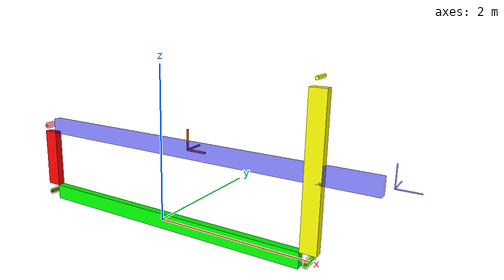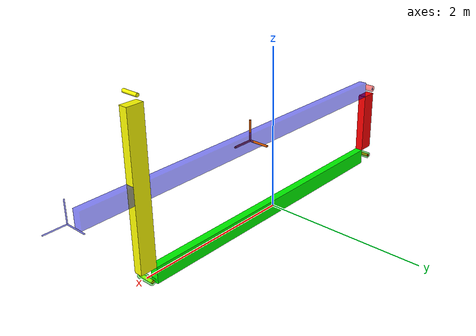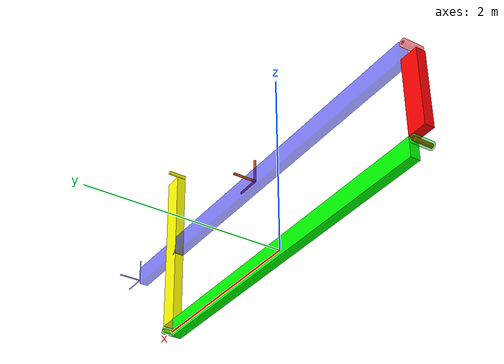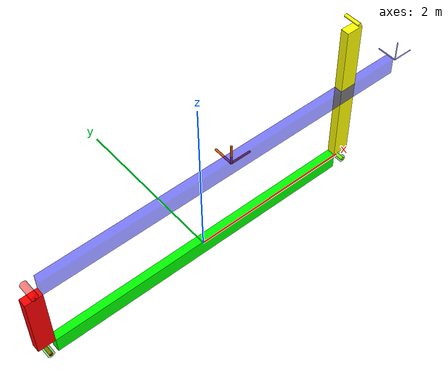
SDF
<?xml version="1.0"?>
<sdf version="1.7">
  <model name="four_bar_unassembled">

    <link name="ground">
      <inertial>
        <mass>0</mass>
        <inertia>
          <ixx>0</ixx> <iyy>0</iyy> <izz>0</izz>
          <ixy>0</ixy> <ixz>0</ixz> <iyz>0</iyz>
        </inertia>
      </inertial>
      <visual name="ground_bar">
        <geometry>
          <box>
            <size>3.8 0.1 0.2</size>
          </box>
        </geometry>
        <material>
          <diffuse>0 1 0 1</diffuse>
        </material>
      </visual>
      <!-- The revolute axes are along y, while a cylinder's own axis is z, so
      the pins are rolled a quarter turn about x to match. -->
      <visual name="world_driver_parent_pin">
        <pose>-2 0 0 1.5707963267948966 0 0</pose>
        <geometry>
          <cylinder>
            <radius>0.04</radius>
            <length>0.2</length>
          </cylinder>
        </geometry>
        <material>
          <diffuse>0 1 0 0.5</diffuse>
        </material>
      </visual>
      <visual name="world_rocker_parent_pin">
        <pose>2 0 0 1.5707963267948966 0 0</pose>
        <geometry>
          <cylinder>
            <radius>0.04</radius>
            <length>0.2</length>
          </cylinder>
        </geometry>
        <material>
          <diffuse>0 1 0 0.5</diffuse>
        </material>
      </visual>
    </link>
    <joint name="world_ground_weld" type="fixed">
      <parent>world</parent>
      <child>ground</child>
    </joint>
    <frame name="Wd" attached_to="ground">
      <pose relative_to="ground">-2 0 0 0 0 0</pose>
    </frame>
    <frame name="Wr" attached_to="ground">
      <pose relative_to="ground">2 0 0 0 0 0</pose>
    </frame>

    <!-- The driver, a thin rod from its link frame Do along +z to Dc. -->
    <link name="driver">
      <pose>-2 0 0 0 0 0</pose>
      <inertial>
        <pose>0 0 0.5 0 0 0</pose>
        <mass>1</mass>
        <inertia>
          <ixx>0.0833333333333333</ixx>
          <iyy>0.0833333333333333</iyy>
          <izz>0</izz>
          <ixy>0</ixy> <ixz>0</ixz> <iyz>0</iyz>
        </inertia>
      </inertial>
      <visual name="driver_bar">
        <pose>0 0 0.5 0 0 0</pose>
        <geometry>
          <box>
            <size>0.2 0.1 0.8</size>
          </box>
        </geometry>
        <material>
          <diffuse>1 0 0 1</diffuse>
        </material>
      </visual>
      <visual name="world_driver_child_pin">
        <pose>0 0 0 1.5707963267948966 0 0</pose>
        <geometry>
          <cylinder>
            <radius>0.02</radius>
            <length>0.2</length>
          </cylinder>
        </geometry>
        <material>
          <diffuse>1 0 0 1</diffuse>
        </material>
      </visual>
      <visual name="driver_coupler_parent_pin">
        <pose>0 0 1 1.5707963267948966 0 0</pose>
        <geometry>
          <cylinder>
            <radius>0.04</radius>
            <length>0.2</length>
          </cylinder>
        </geometry>
        <material>
          <diffuse>1 0 0 0.5</diffuse>
        </material>
      </visual>
    </link>
    <frame name="Dc" attached_to="driver">
      <pose relative_to="driver">0 0 1 0 0 0</pose>
    </frame>

    <link name="coupler">
      <pose>0.4 0 1 0 0 0</pose>
      <inertial>
        <mass>1</mass>
        <inertia>
          <ixx>0</ixx>
          <iyy>1.92</iyy>
          <izz>1.92</izz>
          <ixy>0</ixy> <ixz>0</ixz> <iyz>0</iyz>
        </inertia>
      </inertial>
      <visual name="coupler_bar">
        <geometry>
          <box>
            <size>4.6 0.1 0.2</size>
          </box>
        </geometry>
        <material>
          <diffuse>0 0 1 0.5</diffuse>
        </material>
      </visual>
      <visual name="driver_coupler_child_pin">
        <pose>-2.4 0 0 1.5707963267948966 0 0</pose>
        <geometry>
          <cylinder>
            <radius>0.02</radius>
            <length>0.2</length>
          </cylinder>
        </geometry>
        <material>
          <diffuse>0 0 1 0.5</diffuse>
        </material>
      </visual>
      <!-- Each frame axis is a cylinder, rotated from z onto that axis. -->
      <visual name="Co_x_axis">
        <pose>0.125 0 0 0 1.5707963267948966 0</pose>
        <geometry>
          <cylinder>
            <radius>0.012</radius>
            <length>0.25</length>
          </cylinder>
        </geometry>
        <material>
          <diffuse>0.833 0.333 0 1</diffuse>
        </material>
      </visual>
      <visual name="Co_y_axis">
        <pose>0 0.125 0 1.5707963267948966 0 0</pose>
        <geometry>
          <cylinder>
            <radius>0.012</radius>
            <length>0.25</length>
          </cylinder>
        </geometry>
        <material>
          <diffuse>0.833 0.333 0 1</diffuse>
        </material>
      </visual>
      <visual name="Co_z_axis">
        <pose>0 0 0.125 0 0 0</pose>
        <geometry>
          <cylinder>
            <radius>0.012</radius>
            <length>0.25</length>
          </cylinder>
        </geometry>
        <material>
          <diffuse>0.833 0.333 0 1</diffuse>
        </material>
      </visual>
      <visual name="Cr_x_axis">
        <pose>2.525 0 0 0 1.5707963267948966 0</pose>
        <geometry>
          <cylinder>
            <radius>0.006</radius>
            <length>0.25</length>
          </cylinder>
        </geometry>
        <material>
          <diffuse>0 0 1 0.5</diffuse>
        </material>
      </visual>
      <visual name="Cr_y_axis">
        <pose>2.4 0.125 0 1.5707963267948966 0 0</pose>
        <geometry>
          <cylinder>
            <radius>0.006</radius>
            <length>0.25</length>
          </cylinder>
        </geometry>
        <material>
          <diffuse>0 0 1 0.5</diffuse>
        </material>
      </visual>
      <visual name="Cr_z_axis">
        <pose>2.4 0 0.125 0 0 0</pose>
        <geometry>
          <cylinder>
            <radius>0.006</radius>
            <length>0.25</length>
          </cylinder>
        </geometry>
        <material>
          <diffuse>0 0 1 0.5</diffuse>
        </material>
      </visual>
    </link>
    <frame name="Cd" attached_to="coupler">
      <pose relative_to="coupler">-2.4 0 0 0 0 0</pose>
    </frame>
    <frame name="Cr" attached_to="coupler">
      <pose relative_to="coupler">2.4 0 0 0 0 0</pose>
    </frame>

    <!-- The rocker, a thin rod from its link frame Ro along +z to Rc. -->
    <link name="rocker">
      <pose>2 0 0 0 0 0</pose>
      <inertial>
        <pose>0 0 1 0 0 0</pose>
        <mass>2</mass>
        <inertia>
          <ixx>0.6666666666666667</ixx>
          <iyy>0.6666666666666667</iyy>
          <izz>0</izz>
          <ixy>0</ixy> <ixz>0</ixz> <iyz>0</iyz>
        </inertia>
      </inertial>
      <visual name="rocker_bar">
        <pose>0 0 1 0 0 0</pose>
        <geometry>
          <box>
            <size>0.2 0.1 1.8</size>
          </box>
        </geometry>
        <material>
          <diffuse>1 1 0 1</diffuse>
        </material>
      </visual>
      <visual name="world_rocker_child_pin">
        <pose>0 0 0 1.5707963267948966 0 0</pose>
        <geometry>
          <cylinder>
            <radius>0.02</radius>
            <length>0.2</length>
          </cylinder>
        </geometry>
        <material>
          <diffuse>1 1 0 1</diffuse>
        </material>
      </visual>
      <visual name="coupler_rocker_child_pin">
        <pose>0 0 2 1.5707963267948966 0 0</pose>
        <geometry>
          <cylinder>
            <radius>0.02</radius>
            <length>0.2</length>
          </cylinder>
        </geometry>
        <material>
          <diffuse>1 1 0 1</diffuse>
        </material>
      </visual>
    </link>
    <frame name="Rc" attached_to="rocker">
      <pose relative_to="rocker">0 0 2 0 0 0</pose>
    </frame>

    <joint name="world_driver" type="revolute">
      <parent>ground</parent>
      <child>driver</child>
      <drake:parent_frame>Wd</drake:parent_frame>
      <drake:child_frame>driver</drake:child_frame>
      <axis>
        <xyz expressed_in="driver">0 -1 0</xyz>
        <limit>
          <!-- No effort limit provided. SDFormat defaults to -1, which we
               parse as an actuated joint. -->
        </limit>
      </axis>
    </joint>

    <joint name="world_rocker" type="revolute">
      <parent>ground</parent>
      <child>rocker</child>
      <drake:parent_frame>Wr</drake:parent_frame>
      <drake:child_frame>rocker</drake:child_frame>
      <axis>
        <xyz expressed_in="rocker">0 -1 0</xyz>
        <limit>
          <!-- An effort of 0 is parsed as an unactuated joint. -->
          <effort>0</effort>
        </limit>
      </axis>
    </joint>

    <joint name="driver_coupler" type="revolute">
      <parent>driver</parent>
      <child>coupler</child>
      <drake:parent_frame>Dc</drake:parent_frame>
      <drake:child_frame>Cd</drake:child_frame>
      <axis>
        <xyz expressed_in="Cd">0 -1 0</xyz>
        <limit>
          <effort>0</effort>
        </limit>
      </axis>
    </joint>

    <joint name="coupler_rocker" type="revolute">
      <parent>coupler</parent>
      <child>rocker</child>
      <drake:parent_frame>Cr</drake:parent_frame>
      <drake:child_frame>Rc</drake:child_frame>
      <axis>
        <xyz expressed_in="Rc">0 -1 0</xyz>
        <limit>
          <effort>0</effort>
        </limit>
      </axis>
    </joint>

  </model>
</sdf>
